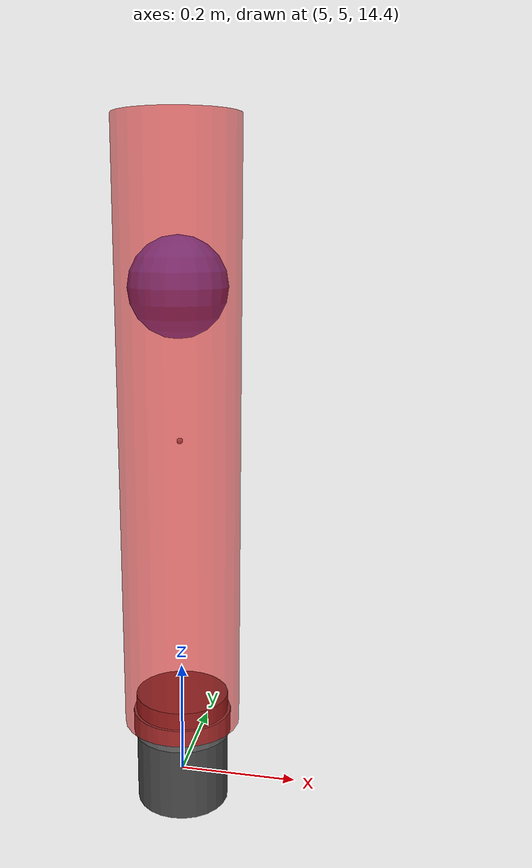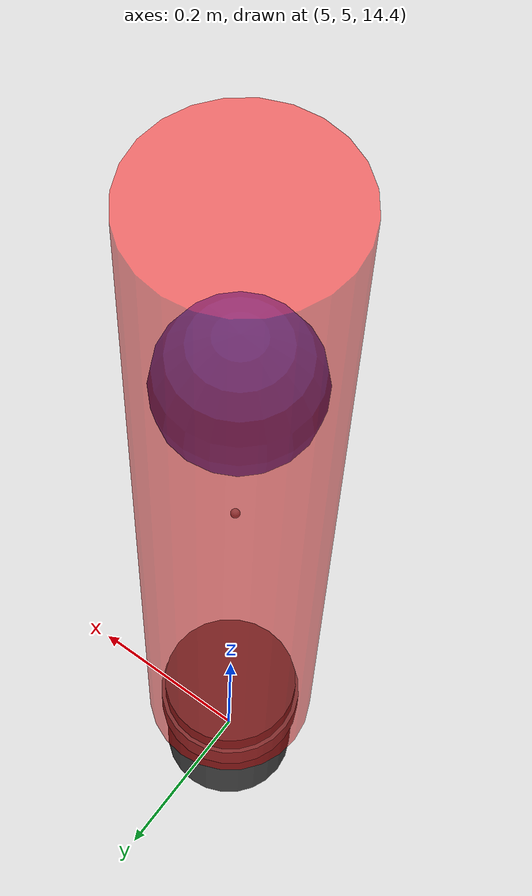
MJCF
<mujoco>
  <option timestep="0.001"/>
  <option gravity="0 0 -9.81"/>
  <option density="1.225" viscosity="0.00002" wind="0 0 0"/>

  <visual>
    <headlight ambient="0.4 0.4 0.4" diffuse="0.6 0.6 0.6" specular="0.1 0.1 0.1"/>
  </visual>

  <worldbody>
    <light directional="true" diffuse="0.8 0.8 0.8" specular="0.3 0.3 0.3" pos="0 -5 20" dir="0 0.5 -1"/>
    <geom type="plane" size="10 10 0.1" rgba=".4 .4 .4 1"/>
    <camera name="my_cam" pos="0 -10 2" euler="90 0 0"/>

    <body name="rocket" pos="5 5 15">
      <joint type="free"/>
      <!-- rocket structure + static fluid mass (m0) -->
      <geom type="cylinder" size="0.1 0.5" rgba="1 0 0 0.5" mass="0.75"/>
      <site name="imu_site" pos="0 0 0"/>

      <!-- sloshing fluid mass (m1) -->
      <body name="slosh_dummy_x" pos="0 0 0.2457">
        <inertial pos="0 0 0" mass="0.001" diaginertia="0.00001 0.00001 0.00001"/>
        <joint name="slosh_x" type="slide" axis="1 0 0" stiffness="25" damping="0.3" limited="true" range="-0.15 0.15"/>
        <body name="slosh_mass_xy" pos="0 0 0">
          <joint name="slosh_y" type="slide" axis="0 1 0" stiffness="25" damping="0.3" limited="true" range="-0.15 0.15"/>
          <geom type="sphere" size="0.08" rgba="0.2 0.4 0.9 0.9" mass="0.2" contype="0" conaffinity="0"/>
        </body>
      </body>

      <body name="gimbal_pitch" pos="0 0 -0.5">
        <joint name="gimbal_y" type="hinge" axis="0 1 0" range="-0.26 0.26" damping="0.5"/>
        <geom type="cylinder" size="0.085 0.02" rgba="0.4 0.4 0.4 1" mass="0.025" contype="0" conaffinity="0"/>
        <body name="gimbal_yaw" pos="0 0 0">
          <joint name="gimbal_x" type="hinge" axis="1 0 0" range="-0.26 0.26" damping="0.5"/>
          <geom type="cylinder" size="0.08 0.1" pos="0 0 -0.05" rgba="0.3 0.3 0.3 1" mass="0.025" contype="0" conaffinity="0"/>
          <site name="thrust_site" pos="0 0 -0.1"/>
        </body>
      </body>
    </body>
  </worldbody>
  <sensor>
    <accelerometer name="body_accel" site="imu_site"/>
    <gyro name="body_gyro" site="imu_site"/>
    <magnetometer name="body_mag" site="imu_site"/>
  </sensor>
  <actuator>
    <position joint="gimbal_x"
              kp="50"
              ctrlrange="-0.26 0.26"
              ctrllimited="true"
              timeconst="0.05"/>
    <position joint="gimbal_y" kp="50" ctrlrange="-0.26 0.26" timeconst="0.05"/>
    <general site="thrust_site" gear="0 0 1 0 0 0" forcerange="0 20" forcelimited="true" dyntype="filter" dynprm="0.2" gainprm="1" biasprm="0 0 0"/>
  </actuator>
</mujoco>
